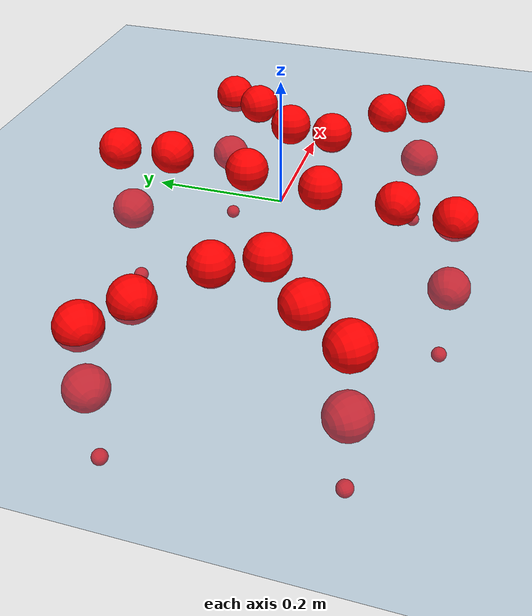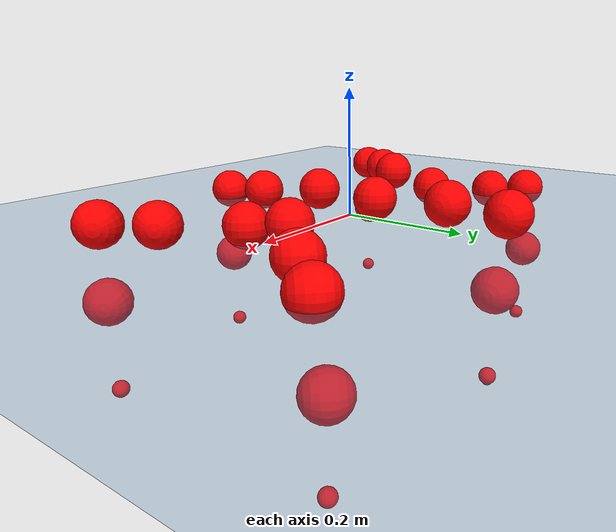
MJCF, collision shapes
<mujoco model="Golem">
  <compiler angle="radian" assetdir="assets" balanceinertia="true" inertiafromgeom="false"/>

  <option timestep="0.005" density="1.2" viscosity="2e-05"/>

  <size nkey="1"/>

  <visual>
    <quality shadowsize="8192"/>
    <map shadowclip="0.5"/>
  </visual>

  <default>
    <default class="/">
      <joint armature="0.01" damping="0.01" frictionloss="0.01"/>
      <geom contype="0" conaffinity="0" group="1" solref="-1000 -80"/>
      <site size="0.01 0.005 0.005" group="5"/>
      <general forcelimited="true" biastype="affine" gainprm="25" biasprm="0 -25 -0.5"/>
      <default class="visual">
        <geom type="mesh" group="2"/>
      </default>
      <default class="collision">
        <geom group="3"/>
      </default>
      <default class="foot">
        <geom size="0.01 0 0" condim="6" group="4" priority="1" solimp="0.015 1 0.01"/>
      </default>
      <default class="reward_collision_sphere">
        <geom group="5" rgba="1 0 0 1"/>
      </default>
    </default>
  </default>

  <asset>
    <texture type="skybox" colorspace="auto" name="//unnamed_texture_0" builtin="gradient" rgb1="0.95 0.95 0.95" rgb2="0.95 0.95 0.95" width="100" height="600"/>
    <texture type="2d" colorspace="auto" name="texplane" builtin="checker" rgb1="0.345 0.575 0.748" rgb2="0.345 0.575 0.748" markrgb="1 1 1" width="512" height="512"/>
    <material name="MatPlane" class="/" texture="texplane" texuniform="true" texrepeat="2 2" specular="0.9"/>
    <mesh name="body" class="/" file="body.stl" scale="0.001 0.001 0.001"/>
    <mesh name="coxa" class="/" file="coxa.stl" scale="0.001 0.001 0.001"/>
    <mesh name="femur" class="/" file="femur.stl" scale="0.001 0.001 0.001"/>
    <mesh name="tibia" class="/" file="tibia.stl" scale="0.001 0.001 0.001"/>
    <mesh name="tarsus" class="/" file="tarsus.stl" scale="0.001 0.001 0.001"/>
  </asset>

  <worldbody>
    <geom name="floor" class="/" size="100 100 0.125" type="plane" group="0" material="MatPlane"/>
    <light name="toplight_shadow" class="/" pos="0 0 5" dir="0.0990148 0.0990148 -0.990148" type="directional" ambient="0.04 0.04 0.04" diffuse="0.55 0.55 0.55" specular="0.12 0.12 0.12"/>
    <light name="toplight_fill" class="/" pos="0 0 5" dir="0.0990148 0.0990148 -0.990148" type="directional" castshadow="false" ambient="0.04 0.04 0.04" diffuse="0.3 0.3 0.3" specular="0.08 0.08 0.08"/>
    <body name="trunk" pos="0.00209681 -0.00241501 0.00354037" quat="0.999998 -0.00162281 -0.000292117 -0.00067598">
      <inertial pos="-0.0100577 -0.00356151 -0.00155821" quat="0.999342 0.0111045 -0.0108679 0.0327677" mass="1.87985" diaginertia="0.0234915 0.00246901 0.000154919"/>
      <joint name="//unnamed_joint_0" type="free"/>
      <geom name="//unnamed_geom_1" class="/" pos="0 0 0.0296354" quat="1 0 0 0" type="mesh" rgba="0.9 0.9 0.9 1" mesh="body"/>
      <site name="imu" class="/" pos="0.162495 -0.00978705 0.110214" size="0.00843519"/>
      <camera name="track" class="/" pos="0 -1.57987 0" quat="0.707107 0.707107 0 0" mode="trackcom"/>
      <camera name="ego_camera" class="/" pos="0.166084 0 0.0463053" quat="-0.5 -0.5 0.5 0.5"/>
      <body name="coxa_RR" pos="-0.228311 -0.0661991 0.0362401" quat="0.382224 -0.00047316 9.7048e-05 -0.92407">
        <inertial pos="-0.00142802 0.00744371 -0.00119304" quat="0.999984 0.00402297 0.00372819 0.00101453" mass="0.133411" diaginertia="0.0378042 0.0036585 0.000216049"/>
        <joint name="coxa_joint_RR" class="/" pos="0 0 0" axis="0.062137 -0.039212 -0.997297" stiffness="0.00108245" range="-2.96605 3.11886" armature="0.00678514" damping="0.0387484" frictionloss="0.00872486"/>
        <geom name="//unnamed_geom_2" class="/" type="mesh" rgba="0.2 0.2 0.2 1" mesh="coxa"/>
        <geom name="//unnamed_geom_3" class="reward_collision_sphere" size="0.0337408" pos="-0.0383272 0 0"/>
        <body name="femur_RR" pos="0.0639716 -0.00169957 -0.00720067" quat="0.502072 -0.496795 0.499798 0.501319">
          <inertial pos="-0.00357638 0.00083432 0.00777776" quat="0.999997 0.000677693 0.00231568 -0.000255557" mass="0.141942" diaginertia="0.0326419 0.00355002 0.00022194"/>
          <joint name="femur_joint_RR" class="/" pos="0 0 0" axis="-0.0401195 0.0444425 -0.998206" range="-3.14001 3.04494" armature="0.00856217" damping="0.0180665" frictionloss="0.00583761"/>
          <geom name="//unnamed_geom_4" class="/" type="mesh" rgba="0.9 0.9 0.9 1" mesh="femur"/>
          <geom name="//unnamed_geom_5" class="reward_collision_sphere" size="0.0337408"/>
          <body name="tibia_RR" pos="0.00743215 -0.087516 0.014556" quat="-0.000109349 1 3.81441e-05 0.000108786">
            <inertial pos="0.000295506 0.0133991 -0.00048358" quat="0.997713 -0.0629704 -0.00680443 0.0236176" mass="0.119818" diaginertia="0.0290552 0.00302168 0.000203579"/>
            <joint name="tibia_joint_RR" class="/" pos="0 0 0" axis="-0.0119173 0.0432037 0.998995" range="-3.31608 3.2114" armature="0.00770963" damping="0" frictionloss="0.0106854"/>
            <geom name="//unnamed_geom_6" class="/" type="mesh" rgba="0.2 0.2 0.2 1" mesh="tibia"/>
            <geom name="//unnamed_geom_7" class="reward_collision_sphere" size="0.0337408"/>
            <body name="tarsus_RR" pos="0.104388 0.0135661 0.0071693" quat="0.999993 -0.00100886 0.00253151 0.00263594">
              <inertial pos="0.0773171 -0.000474738 0.00899837" quat="0.492708 0.452134 0.528728 0.522744" mass="0.111207" diaginertia="0.0367618 0.00295324 0.000259909"/>
              <joint name="tarsus_joint_RR" class="/" pos="0 0 0" axis="0.00165794 -0.00198072 0.999997" stiffness="0.0180791" range="-2.96367 3.18494" armature="0.010486" damping="0" frictionloss="0.00406163"/>
              <geom name="//unnamed_geom_8" class="/" type="mesh" rgba="0.9 0.9 0.9 1" mesh="tarsus"/>
              <geom name="foot_1" class="foot" size="0.00619911" pos="0.143088 0 0" quat="0 -0.707107 0 0.707107"/>
              <geom name="//unnamed_geom_10" class="reward_collision_sphere" size="0.0337408"/>
              <geom name="//unnamed_geom_11" class="reward_collision_sphere" size="0.0126528" pos="0.137339 0 0"/>
              <site name="foot_1" class="foot" pos="0.143088 0 0" quat="0 -0.707107 0 0.707107" size="0.00843519"/>
            </body>
          </body>
        </body>
      </body>
      <body name="coxa_RM" pos="-0.00170501 -0.0978161 0.031536" quat="0.705225 0.00315007 0.00621732 -0.708949">
        <inertial pos="-0.00922861 0.00076469 0.0114335" quat="0.999995 0.000657102 -0.0031114 -0.000906816" mass="0.124383" diaginertia="0.0333392 0.00262615 0.000211318"/>
        <joint name="coxa_joint_RM" class="/" pos="0 0 0" axis="-0.0146106 0.0042063 -0.999884" range="-3.14965 3.11743" armature="0.00387018" damping="0.0376756" frictionloss="0.00624818"/>
        <geom name="//unnamed_geom_12" class="/" type="mesh" rgba="0.2 0.2 0.2 1" mesh="coxa"/>
        <geom name="//unnamed_geom_13" class="reward_collision_sphere" size="0.0337408" pos="-0.0383272 0 0"/>
        <body name="femur_RM" pos="0.0792985 0.0115852 -0.0123877" quat="0.499811 -0.500123 0.500397 0.499669">
          <inertial pos="-0.0133131 0.00795868 0.000978736" quat="0.999706 0.00939921 0.0178106 0.0134753" mass="0.138475" diaginertia="0.0452863 0.00361056 0.00028663"/>
          <joint name="femur_joint_RM" class="/" pos="0 0 0" axis="-0.0463527 0.0123063 -0.998849" range="-3.16577 3.38997" armature="0.00679083" damping="0" frictionloss="0.0115194"/>
          <geom name="//unnamed_geom_14" class="/" type="mesh" rgba="0.9 0.9 0.9 1" mesh="femur"/>
          <geom name="//unnamed_geom_15" class="reward_collision_sphere" size="0.0337408"/>
          <body name="tibia_RM" pos="0.00839682 -0.0880786 -0.00215175" quat="0.003018 0.999992 0.00022988 -0.00278316">
            <inertial pos="0.00823654 -0.0146295 -0.000623853" quat="0.999207 0.0171811 0.0205319 0.0294691" mass="0.127108" diaginertia="0.0370003 0.00342052 0.000233673"/>
            <joint name="tibia_joint_RM" class="/" pos="0 0 0" axis="-0.00863762 -0.0107877 0.999905" stiffness="0.0247933" range="-3.1369 2.97082" armature="0.0102673" damping="0" frictionloss="0.0089167"/>
            <geom name="//unnamed_geom_16" class="/" type="mesh" rgba="0.2 0.2 0.2 1" mesh="tibia"/>
            <geom name="//unnamed_geom_17" class="reward_collision_sphere" size="0.0337408"/>
            <body name="tarsus_RM" pos="0.126862 0.0063304 0.00126934" quat="1 7.55301e-05 2.74338e-05 0.00010953">
              <inertial pos="0.0651619 0.00132195 -0.00411875" quat="0.499343 0.49992 0.500497 0.500239" mass="0.0971699" diaginertia="0.0328213 0.00290845 0.000175096"/>
              <joint name="tarsus_joint_RM" class="/" pos="0 0 0" axis="0.00490473 -0.0180168 0.999826" stiffness="0.0101659" range="-2.9376 3.35663" armature="0.00759052" damping="0.00203868" frictionloss="0.0127001"/>
              <geom name="//unnamed_geom_18" class="/" type="mesh" rgba="0.9 0.9 0.9 1" mesh="tarsus"/>
              <geom name="foot_2" class="foot" size="0.00574384" pos="0.143088 0 0" quat="0 -0.707107 0 0.707107"/>
              <geom name="//unnamed_geom_20" class="reward_collision_sphere" size="0.0337408"/>
              <geom name="//unnamed_geom_21" class="reward_collision_sphere" size="0.0126528" pos="0.137339 0 0"/>
              <site name="foot_2" class="foot" pos="0.143088 0 0" quat="0 -0.707107 0 0.707107" size="0.00843519"/>
            </body>
          </body>
        </body>
      </body>
      <body name="coxa_RF" pos="0.227896 -0.0549136 0.0180938" quat="0.923463 0.00225978 0.000682058 -0.38368">
        <inertial pos="0.00320783 0.0127969 -0.00995363" quat="0.998041 0.0233622 0.0562767 -0.0141597" mass="0.151853" diaginertia="0.0405685 0.00341138 0.00023666"/>
        <joint name="coxa_joint_RF" class="/" pos="0 0 0" axis="0.012952 -0.05394 -0.99846" stiffness="0.00680394" range="-3.40209 2.99741" armature="0.0130418" damping="0.0407722" frictionloss="0.00822353"/>
        <geom name="//unnamed_geom_22" class="/" type="mesh" rgba="0.2 0.2 0.2 1" mesh="coxa"/>
        <geom name="//unnamed_geom_23" class="reward_collision_sphere" size="0.0337408" pos="-0.0383272 0 0"/>
        <body name="femur_RF" pos="0.0786765 0.00667723 0.0071675" quat="0.500334 -0.499783 0.499854 0.500028">
          <inertial pos="0.00963481 -0.0126562 -2.96867e-05" quat="0.999787 -0.00316672 -0.00916291 0.0182259" mass="0.114916" diaginertia="0.0305021 0.00257986 0.000186315"/>
          <joint name="femur_joint_RF" class="/" pos="0 0 0" axis="0.00274745 -0.00729221 -0.99997" range="-3.12604 3.2723" armature="0.00864634" damping="0.0147272" frictionloss="0.0112447"/>
          <geom name="//unnamed_geom_24" class="/" type="mesh" rgba="0.9 0.9 0.9 1" mesh="femur"/>
          <geom name="//unnamed_geom_25" class="reward_collision_sphere" size="0.0337408"/>
          <body name="tibia_RF" pos="-0.00246134 -0.0782055 -0.00610927" quat="0.000308415 1 -5.92132e-05 -0.000137968">
            <inertial pos="0.00108294 -0.000271627 0.0140884" quat="0.998339 0.0374409 -0.0284718 0.0332561" mass="0.125028" diaginertia="0.0374463 0.00373913 0.000194991"/>
            <joint name="tibia_joint_RF" class="/" pos="0 0 0" axis="0.0241797 0.0136911 0.999614" stiffness="0.00895255" range="-3.14649 2.99213" armature="0.0085588" damping="0" frictionloss="0.00524694"/>
            <geom name="//unnamed_geom_26" class="/" type="mesh" rgba="0.2 0.2 0.2 1" mesh="tibia"/>
            <geom name="//unnamed_geom_27" class="reward_collision_sphere" size="0.0337408"/>
            <body name="tarsus_RF" pos="0.111147 -0.000228117 -0.00182201" quat="0.999988 -0.00405229 -0.00092859 -0.00273465">
              <inertial pos="0.0831482 -0.0028164 -0.00434421" quat="0.500789 0.499107 0.49891 0.50119" mass="0.106357" diaginertia="0.0322475 0.0031868 0.000224444"/>
              <joint name="tarsus_joint_RF" class="/" pos="0 0 0" axis="-0.00755222 0.0388206 0.999218" stiffness="0.0282974" range="-3.34669 3.14772" armature="0.00783416" damping="0.0448295" frictionloss="0.00739388"/>
              <geom name="//unnamed_geom_28" class="/" type="mesh" rgba="0.9 0.9 0.9 1" mesh="tarsus"/>
              <geom name="foot_3" class="foot" size="0.00790192" pos="0.143088 0 0" quat="0 -0.707107 0 0.707107"/>
              <geom name="//unnamed_geom_30" class="reward_collision_sphere" size="0.0337408"/>
              <geom name="//unnamed_geom_31" class="reward_collision_sphere" size="0.0126528" pos="0.137339 0 0"/>
              <site name="foot_3" class="foot" pos="0.143088 0 0" quat="0 -0.707107 0 0.707107" size="0.00843519"/>
            </body>
          </body>
        </body>
      </body>
      <body name="coxa_LR" pos="-0.237668 0.0664626 0.0146645" quat="0.382318 -0.00187357 0.000860042 0.924028">
        <inertial pos="0.00957703 0.0102866 0.000682306" quat="0.998754 -0.0156108 0.0289881 0.0375009" mass="0.130593" diaginertia="0.0312281 0.00385666 0.000280907"/>
        <joint name="coxa_joint_LR" class="/" pos="0 0 0" axis="0.00238261 -0.00230061 -0.999995" range="-2.98638 3.01228" armature="0.00603292" damping="0.0174952" frictionloss="0.00833648"/>
        <geom name="//unnamed_geom_32" class="/" type="mesh" rgba="0.2 0.2 0.2 1" mesh="coxa"/>
        <geom name="//unnamed_geom_33" class="reward_collision_sphere" size="0.0337408" pos="-0.0383272 0 0"/>
        <body name="femur_LR" pos="0.0803248 0.00906841 -0.00942767" quat="0.500953 -0.500947 0.499236 0.498859">
          <inertial pos="-0.00153367 0.0148241 -0.00255329" quat="0.999999 -0.000566774 0.00124666 -9.80272e-05" mass="0.117559" diaginertia="0.0392366 0.00269398 0.000247042"/>
          <joint name="femur_joint_LR" class="/" pos="0 0 0" axis="-0.00670348 0.00621634 0.999958" stiffness="0.015095" range="-3.38066 3.1107" armature="0.00895643" damping="0.0803185" frictionloss="0.00824897"/>
          <geom name="//unnamed_geom_34" class="/" type="mesh" rgba="0.9 0.9 0.9 1" mesh="femur"/>
          <geom name="//unnamed_geom_35" class="reward_collision_sphere" size="0.0337408"/>
          <body name="tibia_LR" pos="0.00316103 -0.0774161 0.0142739" quat="-0.00312822 0.999993 0.000619344 0.00191868">
            <inertial pos="-0.00776458 0.0102165 0.00765357" quat="0.998335 0.0474487 0.0253521 0.0208152" mass="0.112965" diaginertia="0.0370543 0.00324922 0.000204085"/>
            <joint name="tibia_joint_LR" class="/" pos="0 0 0" axis="0.0166229 -0.017204 -0.999714" range="-3.28766 2.89322" armature="0.00652739" damping="0.0445293" frictionloss="0.00854023"/>
            <geom name="//unnamed_geom_36" class="/" type="mesh" rgba="0.2 0.2 0.2 1" mesh="tibia"/>
            <geom name="//unnamed_geom_37" class="reward_collision_sphere" size="0.0337408"/>
            <body name="tarsus_LR" pos="0.120845 0.00187187 0.0142244" quat="0.999989 -0.0025091 0.000413656 -0.00404722">
              <inertial pos="0.0788053 0.0133691 0.0120689" quat="0.492044 0.484399 0.522539 0.500202" mass="0.122157" diaginertia="0.0320193 0.00339694 0.000248189"/>
              <joint name="tarsus_joint_LR" class="/" pos="0 0 0" axis="0.0538794 0.0275943 -0.998166" stiffness="0.0595623" range="-3.02015 3.29805" armature="0.0125436" damping="0.0564128" frictionloss="0.0117903"/>
              <geom name="//unnamed_geom_38" class="/" type="mesh" rgba="0.9 0.9 0.9 1" mesh="tarsus"/>
              <geom name="foot_4" class="foot" size="0.00383429" pos="0.143088 0 0" quat="0.707107 0 -0.707107 0"/>
              <geom name="//unnamed_geom_40" class="reward_collision_sphere" size="0.0337408"/>
              <geom name="//unnamed_geom_41" class="reward_collision_sphere" size="0.0126528" pos="0.137339 0 0"/>
              <site name="foot_4" class="foot" pos="0.143088 0 0" quat="0.707107 0 -0.707107 0" size="0.00843519"/>
            </body>
          </body>
        </body>
      </body>
      <body name="coxa_LM" pos="0.014022 0.100835 0.0348456" quat="0.706862 0.000358995 -8.30192e-05 0.707352">
        <inertial pos="0.00506865 0.00947067 -0.00518366" quat="0.998304 0.00996632 -0.0360735 0.0445993" mass="0.112388" diaginertia="0.0265599 0.00251459 0.000178678"/>
        <joint name="coxa_joint_LM" class="/" pos="0 0 0" axis="-0.0265266 0.0663722 -0.997442" stiffness="0.0253847" range="-3.1287 3.07296" armature="0.00671549" damping="0" frictionloss="0.00500509"/>
        <geom name="//unnamed_geom_42" class="/" type="mesh" rgba="0.2 0.2 0.2 1" mesh="coxa"/>
        <geom name="//unnamed_geom_43" class="reward_collision_sphere" size="0.0337408" pos="-0.0383272 0 0"/>
        <body name="femur_LM" pos="0.0868214 -0.00266235 0.00958735" quat="0.500656 -0.499643 0.49959 0.50011">
          <inertial pos="-0.009403 0.00190252 0.0036676" quat="0.998763 -0.0407257 0.0258024 0.0121505" mass="0.0970767" diaginertia="0.0343154 0.00223775 0.000196251"/>
          <joint name="femur_joint_LM" class="/" pos="0 0 0" axis="-0.00147488 0.00111997 0.999998" range="-3.22007 3.12436" armature="0.00873124" damping="0" frictionloss="0.0122757"/>
          <geom name="//unnamed_geom_44" class="/" type="mesh" rgba="0.9 0.9 0.9 1" mesh="femur"/>
          <geom name="//unnamed_geom_45" class="reward_collision_sphere" size="0.0337408"/>
          <body name="tibia_LM" pos="0.00356469 -0.0885514 0.00574966" quat="0.00457937 0.999985 -0.00104924 0.0028415">
            <inertial pos="-0.00838098 0.000604282 0.0114557" quat="0.998172 -0.0188829 0.0265378 -0.0509055" mass="0.123333" diaginertia="0.0348368 0.00260425 0.000228696"/>
            <joint name="tibia_joint_LM" class="/" pos="0 0 0" axis="0.0146441 -0.0339665 -0.999316" stiffness="0.0628628" range="-3.15945 3.13379" armature="0.00785935" damping="0" frictionloss="0.0129107"/>
            <geom name="//unnamed_geom_46" class="/" type="mesh" rgba="0.2 0.2 0.2 1" mesh="tibia"/>
            <geom name="//unnamed_geom_47" class="reward_collision_sphere" size="0.0337408"/>
            <body name="tarsus_LM" pos="0.112379 -0.0112378 0.000366634" quat="0.999983 -0.00121741 0.0016369 -0.00542646">
              <inertial pos="0.0752363 0.000139186 -0.00728046" quat="0.464977 0.472884 0.523433 0.534971" mass="0.10391" diaginertia="0.0282922 0.00332779 0.000216852"/>
              <joint name="tarsus_joint_LM" class="/" pos="0 0 0" axis="-0.0446264 -0.0541877 -0.997533" range="-3.15964 3.15491" armature="0.00883061" damping="0.0222291" frictionloss="0.00336639"/>
              <geom name="//unnamed_geom_48" class="/" type="mesh" rgba="0.9 0.9 0.9 1" mesh="tarsus"/>
              <geom name="foot_5" class="foot" size="0.0088133" pos="0.143088 0 0" quat="0.707107 0 -0.707107 0"/>
              <geom name="//unnamed_geom_50" class="reward_collision_sphere" size="0.0337408"/>
              <geom name="//unnamed_geom_51" class="reward_collision_sphere" size="0.0126528" pos="0.137339 0 0"/>
              <site name="foot_5" class="foot" pos="0.143088 0 0" quat="0.707107 0 -0.707107 0" size="0.00843519"/>
            </body>
          </body>
        </body>
      </body>
      <body name="coxa_LF" pos="0.215056 0.06903 0.0304256" quat="0.923516 -0.000340177 -0.00108789 0.383558">
        <inertial pos="0.000931709 0.000836307 -0.011481" quat="0.9988 0.0172464 -0.0427626 -0.016505" mass="0.132484" diaginertia="0.039198 0.00259747 0.000235881"/>
        <joint name="coxa_joint_LF" class="/" pos="0 0 0" axis="0.034811 -0.0407754 -0.998562" range="-3.09636 3.11638" armature="0.0133586" damping="0.0187402" frictionloss="0.0022518"/>
        <geom name="//unnamed_geom_52" class="/" type="mesh" rgba="0.2 0.2 0.2 1" mesh="coxa"/>
        <geom name="//unnamed_geom_53" class="reward_collision_sphere" size="0.0337408" pos="-0.0383272 0 0"/>
        <body name="femur_LF" pos="0.0770458 0.00181846 -0.0103089" quat="0.499175 -0.499999 0.500493 0.500332">
          <inertial pos="0.0143079 -0.00162363 -0.0147701" quat="0.999995 0.00128886 -0.00205995 -0.0017953" mass="0.129902" diaginertia="0.0287819 0.00302252 0.000216233"/>
          <joint name="femur_joint_LF" class="/" pos="0 0 0" axis="0.00117534 -8.48143e-05 0.999999" range="-3.13679 3.14502" armature="0.00491071" damping="0" frictionloss="0.00700405"/>
          <geom name="//unnamed_geom_54" class="/" type="mesh" rgba="0.9 0.9 0.9 1" mesh="femur"/>
          <geom name="//unnamed_geom_55" class="reward_collision_sphere" size="0.0337408"/>
          <body name="tibia_LF" pos="0.0125318 -0.0828703 0.00818449" quat="0.00329298 0.999992 -0.0022163 0.00063811">
            <inertial pos="0.00603891 0.0141594 -0.00112879" quat="0.999997 -0.0023738 0.000910858 0.000340218" mass="0.13263" diaginertia="0.0472846 0.00359108 0.000237654"/>
            <joint name="tibia_joint_LF" class="/" pos="0 0 0" axis="-0.00242968 -0.00147121 -0.999996" stiffness="0.0215774" range="-3.15501 3.10888" armature="0.00412486" damping="0.046063" frictionloss="0.00867847"/>
            <geom name="//unnamed_geom_56" class="/" type="mesh" rgba="0.2 0.2 0.2 1" mesh="tibia"/>
            <geom name="//unnamed_geom_57" class="reward_collision_sphere" size="0.0337408"/>
            <body name="tarsus_LF" pos="0.12307 0.00072556 -0.0134413" quat="0.999999 -0.00033143 0.00025594 0.000989053">
              <inertial pos="0.0746476 -0.00752577 0.00202382" quat="0.512428 0.52286 0.466539 0.496363" mass="0.159302" diaginertia="0.0373924 0.00410285 0.000231927"/>
              <joint name="tarsus_joint_LF" class="/" pos="0 0 0" axis="-0.014459 0.0249569 -0.999584" range="-3.19986 3.11423" armature="0.00356258" damping="0.0597779" frictionloss="0.014272"/>
              <geom name="//unnamed_geom_58" class="/" type="mesh" rgba="0.9 0.9 0.9 1" mesh="tarsus"/>
              <geom name="foot_6" class="foot" size="0.00678956" pos="0.143088 0 0" quat="0.707107 0 -0.707107 0"/>
              <geom name="//unnamed_geom_60" class="reward_collision_sphere" size="0.0337408"/>
              <geom name="//unnamed_geom_61" class="reward_collision_sphere" size="0.0126528" pos="0.137339 0 0"/>
              <site name="foot_6" class="foot" pos="0.143088 0 0" quat="0.707107 0 -0.707107 0" size="0.00843519"/>
            </body>
          </body>
        </body>
      </body>
    </body>
  </worldbody>

  <contact>
    <pair class="/" geom1="floor" geom2="foot_1" name="//unnamed_contact_0"/>
    <pair class="/" geom1="floor" geom2="foot_2" name="//unnamed_contact_1"/>
    <pair class="/" geom1="floor" geom2="foot_3" name="//unnamed_contact_2"/>
    <pair class="/" geom1="floor" geom2="foot_4" name="//unnamed_contact_3"/>
    <pair class="/" geom1="floor" geom2="foot_5" name="//unnamed_contact_4"/>
    <pair class="/" geom1="floor" geom2="foot_6" name="//unnamed_contact_5"/>
  </contact>

  <actuator>
    <general name="coxa_joint_RR" class="/" joint="coxa_joint_RR" forcerange="-7.31952 7.31952" gainprm="14.9839" biasprm="0 -14.9839 -0.46924"/>
    <general name="femur_joint_RR" class="/" joint="femur_joint_RR" forcerange="-6.37915 6.37915" gainprm="14.9839" biasprm="0 -14.9839 -0.46924"/>
    <general name="tibia_joint_RR" class="/" joint="tibia_joint_RR" forcerange="-7.11005 7.11005" gainprm="14.9839" biasprm="0 -14.9839 -0.46924"/>
    <general name="tarsus_joint_RR" class="/" joint="tarsus_joint_RR" forcerange="-3.45021 3.45021" gainprm="14.9839" biasprm="0 -14.9839 -0.46924"/>
    <general name="coxa_joint_RM" class="/" joint="coxa_joint_RM" forcerange="-5.90553 5.90553" gainprm="14.9839" biasprm="0 -14.9839 -0.46924"/>
    <general name="femur_joint_RM" class="/" joint="femur_joint_RM" forcerange="-6.20703 6.20703" gainprm="14.9839" biasprm="0 -14.9839 -0.46924"/>
    <general name="tibia_joint_RM" class="/" joint="tibia_joint_RM" forcerange="-6.43368 6.43368" gainprm="14.9839" biasprm="0 -14.9839 -0.46924"/>
    <general name="tarsus_joint_RM" class="/" joint="tarsus_joint_RM" forcerange="-3.06151 3.06151" gainprm="14.9839" biasprm="0 -14.9839 -0.46924"/>
    <general name="coxa_joint_RF" class="/" joint="coxa_joint_RF" forcerange="-4.47261 4.47261" gainprm="14.9839" biasprm="0 -14.9839 -0.46924"/>
    <general name="femur_joint_RF" class="/" joint="femur_joint_RF" forcerange="-9.12162 9.12162" gainprm="14.9839" biasprm="0 -14.9839 -0.46924"/>
    <general name="tibia_joint_RF" class="/" joint="tibia_joint_RF" forcerange="-4.18389 4.18389" gainprm="14.9839" biasprm="0 -14.9839 -0.46924"/>
    <general name="tarsus_joint_RF" class="/" joint="tarsus_joint_RF" forcerange="-8.26603 8.26603" gainprm="14.9839" biasprm="0 -14.9839 -0.46924"/>
    <general name="coxa_joint_LR" class="/" joint="coxa_joint_LR" forcerange="-7.99113 7.99113" gainprm="14.9839" biasprm="0 -14.9839 -0.46924"/>
    <general name="femur_joint_LR" class="/" joint="femur_joint_LR" forcerange="-6.22281 6.22281" gainprm="14.9839" biasprm="0 -14.9839 -0.46924"/>
    <general name="tibia_joint_LR" class="/" joint="tibia_joint_LR" forcerange="-6.29367 6.29367" gainprm="14.9839" biasprm="0 -14.9839 -0.46924"/>
    <general name="tarsus_joint_LR" class="/" joint="tarsus_joint_LR" forcerange="-8.00819 8.00819" gainprm="14.9839" biasprm="0 -14.9839 -0.46924"/>
    <general name="coxa_joint_LM" class="/" joint="coxa_joint_LM" forcerange="-6.70404 6.70404" gainprm="14.9839" biasprm="0 -14.9839 -0.46924"/>
    <general name="femur_joint_LM" class="/" joint="femur_joint_LM" forcerange="-8.12705 8.12705" gainprm="14.9839" biasprm="0 -14.9839 -0.46924"/>
    <general name="tibia_joint_LM" class="/" joint="tibia_joint_LM" forcerange="-7.40009 7.40009" gainprm="14.9839" biasprm="0 -14.9839 -0.46924"/>
    <general name="tarsus_joint_LM" class="/" joint="tarsus_joint_LM" forcerange="-6.79848 6.79848" gainprm="14.9839" biasprm="0 -14.9839 -0.46924"/>
    <general name="coxa_joint_LF" class="/" joint="coxa_joint_LF" forcerange="-8.82639 8.82639" gainprm="14.9839" biasprm="0 -14.9839 -0.46924"/>
    <general name="femur_joint_LF" class="/" joint="femur_joint_LF" forcerange="-7.99719 7.99719" gainprm="14.9839" biasprm="0 -14.9839 -0.46924"/>
    <general name="tibia_joint_LF" class="/" joint="tibia_joint_LF" forcerange="-4.33533 4.33533" gainprm="14.9839" biasprm="0 -14.9839 -0.46924"/>
    <general name="tarsus_joint_LF" class="/" joint="tarsus_joint_LF" forcerange="-7.31442 7.31442" gainprm="14.9839" biasprm="0 -14.9839 -0.46924"/>
  </actuator>

  <sensor>
    <gyro site="imu" name="imu_angular_velocity"/>
    <velocimeter site="imu" name="imu_linear_velocity"/>
    <framelinvel objtype="site" objname="foot_1" name="foot_1_global_linear_velocity"/>
    <framelinvel objtype="site" objname="foot_2" name="foot_2_global_linear_velocity"/>
    <framelinvel objtype="site" objname="foot_3" name="foot_3_global_linear_velocity"/>
    <framelinvel objtype="site" objname="foot_4" name="foot_4_global_linear_velocity"/>
    <framelinvel objtype="site" objname="foot_5" name="foot_5_global_linear_velocity"/>
    <framelinvel objtype="site" objname="foot_6" name="foot_6_global_linear_velocity"/>
  </sensor>

  <keyframe>
    <key name="home" qpos="0 0 0.1457 1 0 0 0 0 0 0 0 0 0 0 0 0 0 0 0 0 0 0 0 0 0 0 0 0 0 0 0"/>
  </keyframe>
</mujoco>
